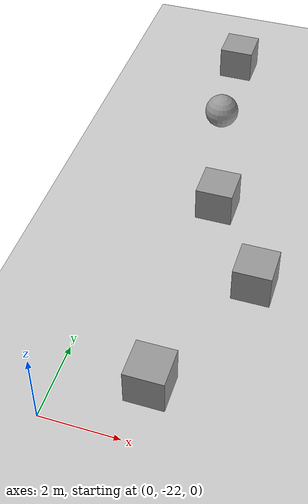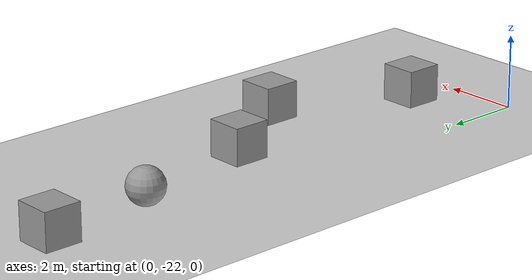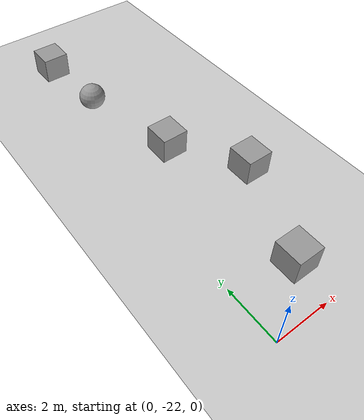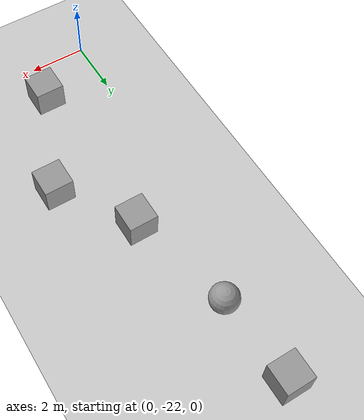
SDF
<sdf version="1.6">
 <world name="default">
  <model name="ground_plane">
   <static>1</static>
   <link name="link">
    <collision name="collision">
     <geometry><plane><normal>0 0 1</normal><size>100 100</size></plane></geometry>
     <surface><friction><ode><mu>100</mu><mu2>50</mu2></ode></friction></surface>
    </collision>
    <visual name="visual">
     <cast_shadows>0</cast_shadows>
     <geometry><plane><normal>0 0 1</normal><size>100 100</size></plane></geometry>
     <material>
      <script><uri>file://media/materials/scripts/gazebo.material</uri><name>Gazebo/Grey</name></script>
     </material>
    </visual>
   </link>
  </model>
  <model name="unit_box_3">
   <pose>0.978335 -7.68293 0.499995 0 1e-05 0</pose>
   <link name="link">
    <inertial>
     <mass>1</mass>
     <inertia>
      <ixx>0.166667</ixx>
      <ixy>0</ixy>
      <ixz>0</ixz>
      <iyy>0.166667</iyy>
      <iyz>0</iyz>
      <izz>0.166667</izz>
     </inertia>
    </inertial>
    <collision name="collision"><geometry><box><size>1 1 1</size></box></geometry></collision>
    <visual name="visual">
     <geometry><box><size>1 1 1</size></box></geometry>
     <material>
      <script><name>Gazebo/Grey</name><uri>file://media/materials/scripts/gazebo.material</uri></script>
     </material>
    </visual>
   </link>
  </model>
  <model name="unit_sphere_0">
   <pose>1.18498 -10.624 0.5 0 -0 0</pose>
   <link name="link">
    <inertial>
     <mass>1</mass>
     <inertia><ixx>0.1</ixx><ixy>0</ixy><ixz>0</ixz><iyy>0.1</iyy><iyz>0</iyz><izz>0.1</izz></inertia>
    </inertial>
    <collision name="collision"><geometry><sphere><radius>0.5</radius></sphere></geometry></collision>
    <visual name="visual">
     <geometry><sphere><radius>0.5</radius></sphere></geometry>
     <material>
      <script><name>Gazebo/Grey</name><uri>file://media/materials/scripts/gazebo.material</uri></script>
     </material>
    </visual>
   </link>
  </model>
  <model name="unit_box_34">
   <pose>3.75131 -16.8471 0.5005 -0 -0 -0</pose>
   <link name="link">
    <inertial>
     <mass>1</mass>
     <inertia>
      <ixx>0.166667</ixx>
      <ixy>0</ixy>
      <ixz>0</ixz>
      <iyy>0.166667</iyy>
      <iyz>0</iyz>
      <izz>0.166667</izz>
     </inertia>
    </inertial>
    <collision name="collision"><geometry><box><size>1 1 1</size></box></geometry></collision>
    <visual name="visual">
     <geometry><box><size>1 1 1</size></box></geometry>
     <material>
      <script><name>Gazebo/Grey</name><uri>file://media/materials/scripts/gazebo.material</uri></script>
     </material>
    </visual>
   </link>
  </model>
  <model name="unit_box_39">
   <pose>2.19847 -20.5294 0.5005 -0 -0 -0</pose>
   <link name="link">
    <inertial>
     <mass>1</mass>
     <inertia>
      <ixx>0.166667</ixx>
      <ixy>0</ixy>
      <ixz>0</ixz>
      <iyy>0.166667</iyy>
      <iyz>0</iyz>
      <izz>0.166667</izz>
     </inertia>
    </inertial>
    <collision name="collision"><geometry><box><size>1 1 1</size></box></geometry></collision>
    <visual name="visual">
     <geometry><box><size>1 1 1</size></box></geometry>
     <material>
      <script><name>Gazebo/Grey</name><uri>file://media/materials/scripts/gazebo.material</uri></script>
     </material>
    </visual>
   </link>
  </model>
  <model name="unit_box_40">
   <pose>2.08223 -14.3204 0.500499 3e-06 -1e-06 -6e-06</pose>
   <link name="link">
    <inertial>
     <mass>1</mass>
     <inertia>
      <ixx>0.166667</ixx>
      <ixy>0</ixy>
      <ixz>0</ixz>
      <iyy>0.166667</iyy>
      <iyz>0</iyz>
      <izz>0.166667</izz>
     </inertia>
    </inertial>
    <collision name="collision"><geometry><box><size>1 1 1</size></box></geometry></collision>
    <visual name="visual">
     <geometry><box><size>1 1 1</size></box></geometry>
     <material>
      <script><name>Gazebo/Grey</name><uri>file://media/materials/scripts/gazebo.material</uri></script>
     </material>
    </visual>
   </link>
  </model>
 </world>
</sdf>
